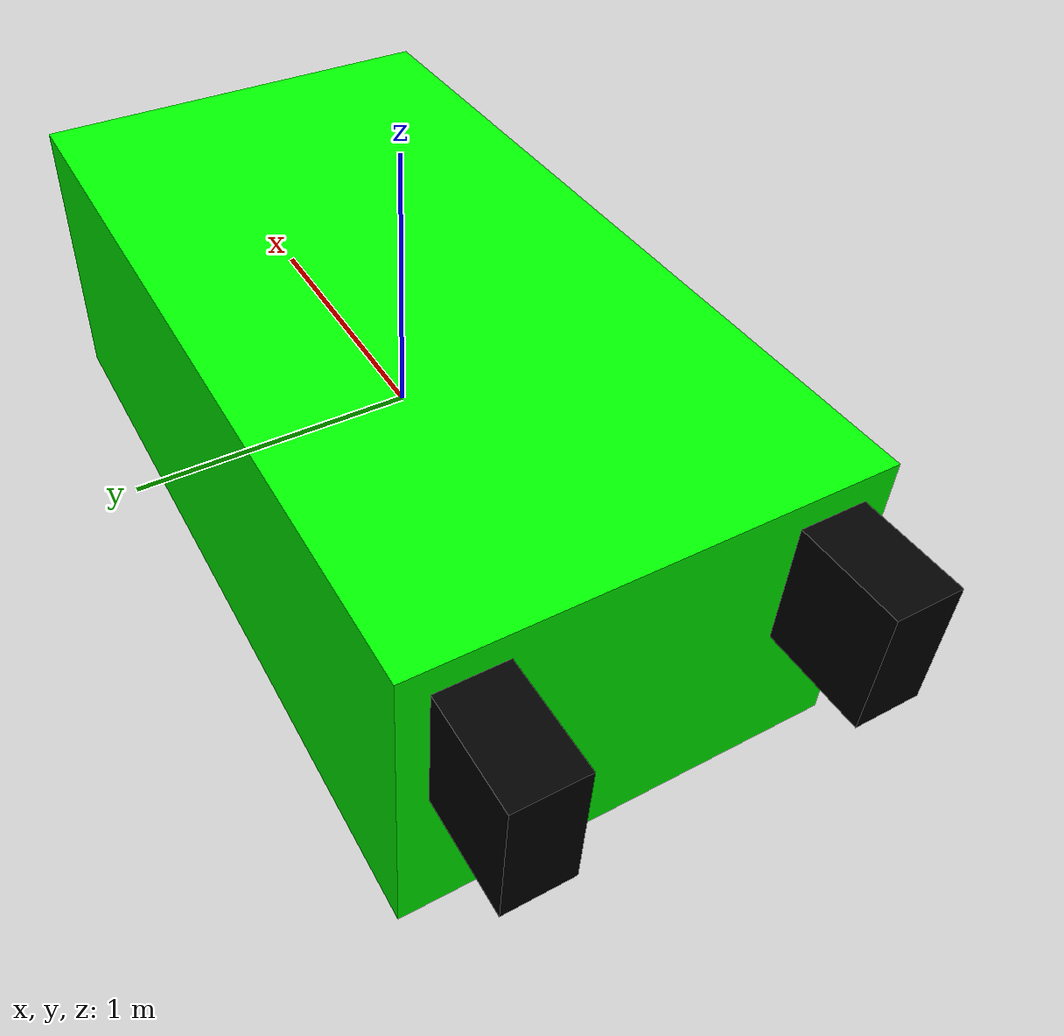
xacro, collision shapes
<?xml version="1.0"?>
<robot xmlns:xacro="http://www.ros.org/wiki/xacro"  name="robot">

    <!-- |           PARAMETERS & FILES & SO ON         |-->

    <!-- STL & DAE files -->
    <xacro:property name="RACECAR_WHEEL_STL" value="file://$(find simulator_description)/meshes/car1/wheel.stl"/>
    <xacro:property name="RACECAR_COLLISION_STL" value="file://$(find simulator_description)/meshes/car1/whole_car.stl"/>
    <xacro:property name="RACECAR_STEERING_HINGE_STL" value="file://$(find simulator_description)/meshes/car1/steering_hinge.STL"/> <!-- the steering hinge is just a ball to make the wheel steer-->
    <xacro:property name="RACECAR_VISUAL_DAE" value=""/>

    <!-- Positions of components -->
    <!-- Wheels are positioned on the steering hinge -->
    <!-- We only parametrize rear wheels are front wheels are positioned on the hinges -->
    <xacro:property name="RACECAR_STEERING_HINGE_X" value="0.050"/>
    <xacro:property name="RACECAR_STEERING_HINGE_Y" value="0.575"/>
    <xacro:property name="RACECAR_STEERING_HINGE_Z" value="0.23"/>
    <xacro:property name="RACECAR_WHEEL_REAR_X" value="-1.6" />
    <xacro:property name="RACECAR_WHEEL_REAR_Y" value="0.575" />
    <xacro:property name="RACECAR_WHEEL_REAR_Z" value="0.23" />

    <!-- Racecar Parameters -->
    <!-- most of these parameters depend on the specifics of your vehicle -->
    <!-- consider that these dimensions come roughly from the STL-->
    <!-- Gazebo wants coherent values for Inertia. -->
    <!-- Consider using the scripts for plugging these values. -->
    <xacro:property name="RACECAR_WIDTH" value="1.575"/>
    <xacro:property name="RACECAR_LENGTH" value="2.942"/>
    <xacro:property name="RACECAR_HEIGHT" value="1.119"/>
    <xacro:property name="COG_HEIGHT" value="0.7"/>
    <xacro:property name="RACECAR_MASS" value="190.0"/> <!-- [kg] -->
    <xacro:property name="RACECAR_INERTIA_IXX" value="59.10244"/> <!-- [kg^2 m] -->
    <xacro:property name="RACECAR_INERTIA_IXY" value="0.0"/> <!-- [kg^2 m] -->
    <xacro:property name="RACECAR_INERTIA_IXZ" value="0.0"/> <!-- [kg^2 m] -->
    <xacro:property name="RACECAR_INERTIA_IYY" value="156.86915"/> <!-- [kg^2 m] -->
    <xacro:property name="RACECAR_INERTIA_IYZ" value="0.0"/> <!-- [kg^2 m] -->
    <xacro:property name="RACECAR_INERTIA_IZZ" value="176.31983"/> <!-- [kg^2 m] -->

    <!-- Steering Hinge Paranmeters -->
    <xacro:property name="STEERING_HINGE_WIDTH" value="0.1"/>
    <xacro:property name="STEERING_HINGE_LENGTH" value="0.1"/>
    <xacro:property name="STEERING_HINGE_HEIGHT" value="0.1"/>
    <xacro:property name="STEERING_HINGE_MASS" value="2.0"/> <!-- [kg] -->
    <xacro:property name="STEERING_HINGE_INERTIA_IXX" value="0.00333"/> <!-- [kg^2 m] -->
    <xacro:property name="STEERING_HINGE_INERTIA_IXY" value="0.0"/> <!-- [kg^2 m] -->
    <xacro:property name="STEERING_HINGE_INERTIA_IXZ" value="0.0"/> <!-- [kg^2 m] -->
    <xacro:property name="STEERING_HINGE_INERTIA_IYY" value="0.00333"/> <!-- [kg^2 m] -->
    <xacro:property name="STEERING_HINGE_INERTIA_IYZ" value="0.0"/> <!-- [kg^2 m] -->
    <xacro:property name="STEERING_HINGE_INERTIA_IZZ" value="0.00333"/> <!-- [kg^2 m] -->

    <!-- Tire Parameters -->
    <xacro:property name="WHEEL_WIDTH" value="0.23"/>
    <xacro:property name="WHEEL_LENGTH" value="0.46"/>
    <xacro:property name="WHEEL_HEIGHT" value="0.46" />
    <xacro:property name="WHEEL_MASS" value="10.0"/> <!-- [kg] -->
    <xacro:property name="WHEEL_INERTIA_IXX" value="0.17633" /> <!-- [kg^2 m] -->
    <xacro:property name="WHEEL_INERTIA_IXY" value="0.0" /> <!-- [kg^2 m] -->
    <xacro:property name="WHEEL_INERTIA_IXZ" value="0.0" /> <!-- [kg^2 m] -->
    <xacro:property name="WHEEL_INERTIA_IYY" value="0.00333" /> <!-- [kg^2 m] -->
    <xacro:property name="WHEEL_INERTIA_IYZ" value="0.0" /> <!-- [kg^2 m] -->
    <xacro:property name="WHEEL_INERTIA_IZZ" value="0.00333" /> <!-- [kg^2 m] -->

    <!-- Actuators Parameters-->

    <xacro:property name="DUMMY_VALUE" value="1.0" />

    <!-- Miscellaneous materials -->
    <material name="blue"> <color rgba="0.0 0.0 0.8 1.0"/>  </material>
    <material name="orange"> <color rgba="${255/255} ${108/255} ${10/255} 1.0"/> </material>
    <material name="green"> <color rgba="0.0 1.0 0.0 0.9"/> </material>
    <material name="white"> <color rgba="1.0 1.0 1.0 1.0"/>  </material>
    <material name="black"> <color rgba="0.0 0.0 0.0 1.0"/>  </material>

    <!-- |              ACTUAL ROBOT              |-->

    <!-- Origin of the Robot -->
    <link name="base_footprint">
    </link>

    <joint name="base_footprint_to_base_chassis" type="fixed">
        <origin xyz="0.0 0.0 0.0"/>
        <parent link="base_footprint"/>
        <child link="base_chassis" />
    </joint>

    <!-- Base Chassis of the Vehicle Model and Joints to components-->
    <link name="base_chassis">
        <visual>
            <geometry>
                <!-- scaled because STL model is really strange-->
                <mesh filename="${RACECAR_COLLISION_STL}" scale="0.001 0.001 0.001"/>
            </geometry>
            <material name="green" />
        </visual>
        <collision>
            <geometry>
                <box size="${RACECAR_LENGTH} ${RACECAR_WIDTH} ${RACECAR_HEIGHT}" />
            </geometry>
        </collision>
        <inertial>
            <mass value="${RACECAR_MASS}" />
            <inertia ixx="${RACECAR_INERTIA_IXX}" ixy="${RACECAR_INERTIA_IXY}" ixz="${RACECAR_INERTIA_IXZ}" iyy="${RACECAR_INERTIA_IYY}" iyz="${RACECAR_INERTIA_IYZ}" izz="${RACECAR_INERTIA_IZZ}" />
        </inertial>
    </link>

    <joint name="base_chassis_to_left_steering_hinge" type="revolute">
        <parent link="base_chassis"/>
        <child link="left_steering_hinge" />
        <origin xyz="${RACECAR_STEERING_HINGE_X} ${RACECAR_STEERING_HINGE_Y} ${RACECAR_STEERING_HINGE_Z}"/>
        <axis xyz="0 1 0" />
        <limit effort="100.0" velocity="10.0" lower="-0.795" upper="+0.795"/>
    </joint>

    <joint name="base_chassis_to_right_steering_hinge" type="revolute">
        <parent link="base_chassis"/>
        <child link="right_steering_hinge" />
        <origin xyz="${RACECAR_STEERING_HINGE_X} -${RACECAR_STEERING_HINGE_Y} ${RACECAR_STEERING_HINGE_Z}"/>
        <axis xyz="0 1 0" />
        <limit effort="100.0" velocity="10.0" lower="-0.795" upper="+0.795"/>
    </joint>

    <joint name="base_chassis_to_left_rear_wheel" type="continuous">
        <parent link="base_chassis"/>
        <child link="left_rear_wheel" />
        <origin xyz="${RACECAR_WHEEL_REAR_X} ${RACECAR_WHEEL_REAR_Y} ${RACECAR_WHEEL_REAR_Z}"/>
        <axis xyz="0 1 0" />
        <limit effort="100.0" velocity="10.0"/>
    </joint>

    <joint name="base_chassis_to_right_rear_wheel" type="continuous">
        <parent link="base_chassis"/>
        <child link="right_rear_wheel" />
        <origin xyz="${RACECAR_WHEEL_REAR_X} -${RACECAR_WHEEL_REAR_Y} ${RACECAR_WHEEL_REAR_Z}"/>
        <axis xyz="0 1 0" />
        <limit effort="100.0" velocity="10.0"/>
    </joint>

    <!-- Left & Right Steering Hinges + Joints to wheels -->
    <link name="left_steering_hinge">
        <visual>
            <geometry>
                <mesh filename="${RACECAR_STEERING_HINGE_STL}" scale="1 1 1"/>
            </geometry>
        </visual>
        <collision>
            <geometry>
                <box size="${STEERING_HINGE_LENGTH} ${STEERING_HINGE_WIDTH} ${STEERING_HINGE_HEIGHT}" />
            </geometry>
        </collision>
        <inertial>
            <mass value="${STEERING_HINGE_MASS}"/>
            <inertia ixx="${RACECAR_INERTIA_IXX}" ixy="${RACECAR_INERTIA_IXY}" ixz="${RACECAR_INERTIA_IXZ}" iyy="${RACECAR_INERTIA_IYY}" iyz="${RACECAR_INERTIA_IYZ}" izz="${RACECAR_INERTIA_IZZ}" />
        </inertial>
    </link>

    <link name="right_steering_hinge">
        <visual>
            <geometry>
                <mesh filename="${RACECAR_STEERING_HINGE_STL}" scale="1 1 1"/>
            </geometry>
        </visual>
        <collision>
            <geometry>
                <box size="${STEERING_HINGE_LENGTH} ${STEERING_HINGE_WIDTH} ${STEERING_HINGE_HEIGHT}" />
            </geometry>
        </collision>
        <inertial>
            <mass value="${STEERING_HINGE_MASS}"/>
            <inertia ixx="${RACECAR_INERTIA_IXX}" ixy="${RACECAR_INERTIA_IXY}" ixz="${RACECAR_INERTIA_IXZ}" iyy="${RACECAR_INERTIA_IYY}" iyz="${RACECAR_INERTIA_IYZ}" izz="${RACECAR_INERTIA_IZZ}" />
        </inertial>
    </link>

    <joint name="left_steering_hinge_to_left_front_wheel" type="continuous">
        <parent link="left_steering_hinge"/>
        <child link="left_front_wheel" />
        <origin xyz="0 0 0"/>
        <axis xyz="0 1 0" />
        <limit effort="100.0" velocity="10.0"/>
    </joint>

    <joint name="right_steering_hinge_to_right_front_wheel" type="continuous">
        <parent link="right_steering_hinge"/>
        <child link="right_front_wheel" />
        <origin xyz="0 0 0"/>
        <axis xyz="0 1 0" />
        <limit effort="100.0" velocity="10.0"/>
    </joint>

    <!-- Front Wheels -->
    <link name="left_front_wheel">
        <visual>
            <geometry>
                <mesh filename="${RACECAR_WHEEL_STL}" scale="1 1 1"/>
            </geometry>
            <material name="black" />
        </visual>
        <collision>
            <geometry>
                <box size="${WHEEL_LENGTH} ${WHEEL_WIDTH} ${WHEEL_HEIGHT}"/>
            </geometry>
        </collision>
        <inertial>
            <mass value="${WHEEL_MASS}"/>
            <inertia ixx="${RACECAR_INERTIA_IXX}" ixy="${RACECAR_INERTIA_IXY}" ixz="${RACECAR_INERTIA_IXZ}" iyy="${RACECAR_INERTIA_IYY}" iyz="${RACECAR_INERTIA_IYZ}" izz="${RACECAR_INERTIA_IZZ}" />
        </inertial>
    </link>

    <link name="right_front_wheel">
        <visual>
            <geometry>
                <mesh filename="${RACECAR_WHEEL_STL}" scale="1 1 1"/>
            </geometry>
            <material name="black" />
        </visual>
        <collision>
            <geometry>
                <box size="${WHEEL_LENGTH} ${WHEEL_WIDTH} ${WHEEL_HEIGHT}"/>
            </geometry>
        </collision>
        <inertial>
            <mass value="${WHEEL_MASS}"/>
            <inertia ixx="${RACECAR_INERTIA_IXX}" ixy="${RACECAR_INERTIA_IXY}" ixz="${RACECAR_INERTIA_IXZ}" iyy="${RACECAR_INERTIA_IYY}" iyz="${RACECAR_INERTIA_IYZ}" izz="${RACECAR_INERTIA_IZZ}" />
        </inertial>
    </link>

    <!-- Rear Wheels -->
    <link name="left_rear_wheel">
        <visual>
            <geometry>
                <mesh filename="${RACECAR_WHEEL_STL}" scale="1 1 1"/>
            </geometry>
            <material name="black" />
        </visual>
        <collision>
            <geometry>
                <box size="${WHEEL_LENGTH} ${WHEEL_WIDTH} ${WHEEL_HEIGHT}"/>
            </geometry>
        </collision>
        <inertial>
            <mass value="${WHEEL_MASS}"/>
            <inertia ixx="${RACECAR_INERTIA_IXX}" ixy="${RACECAR_INERTIA_IXY}" ixz="${RACECAR_INERTIA_IXZ}" iyy="${RACECAR_INERTIA_IYY}" iyz="${RACECAR_INERTIA_IYZ}" izz="${RACECAR_INERTIA_IZZ}" />
        </inertial>
    </link>

    <link name="right_rear_wheel">
        <visual>
            <geometry>
                <mesh filename="${RACECAR_WHEEL_STL}" scale="1 1 1"/>
            </geometry>
            <material name="black" />
        </visual>
        <collision>
            <geometry>
                <box size="${WHEEL_LENGTH} ${WHEEL_WIDTH} ${WHEEL_HEIGHT}"/>
            </geometry>
        </collision>
        <inertial>
            <mass value="${WHEEL_MASS}"/>
            <inertia ixx="${RACECAR_INERTIA_IXX}" ixy="${RACECAR_INERTIA_IXY}" ixz="${RACECAR_INERTIA_IXZ}" iyy="${RACECAR_INERTIA_IYY}" iyz="${RACECAR_INERTIA_IYZ}" izz="${RACECAR_INERTIA_IZZ}" />
        </inertial>
    </link>

</robot>
